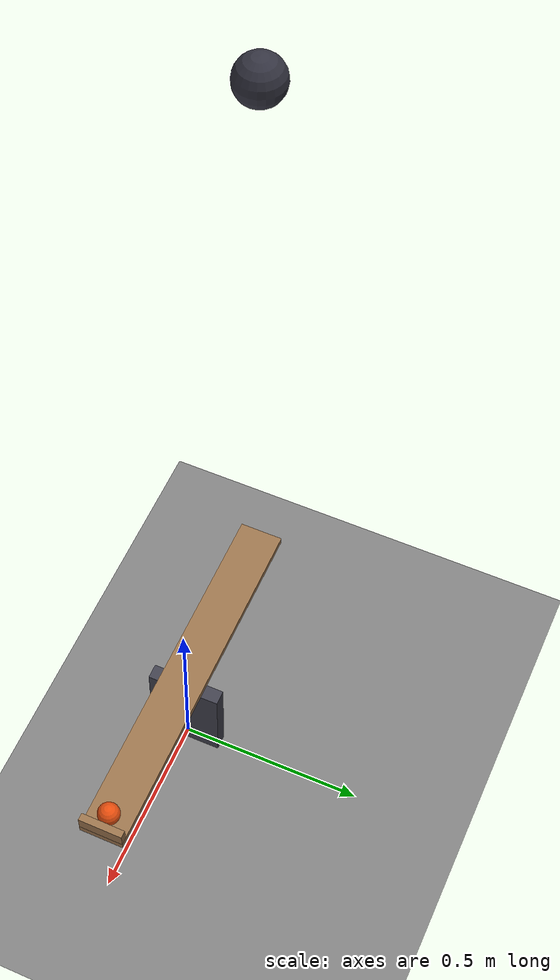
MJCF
<mujoco model="seesaw_throw">
  <compiler angle="radian"/>
  <option timestep="0.002"/>
  <worldbody>
    <geom name="floor" type="plane" size="8 8 0.1" friction="0.8 0.005 0.002"/>
    <body name="fulcrum">
      <geom name="fulcrum" type="box" pos="0 0 0.13" size="0.02 0.1 0.13" rgba="0.25 0.25 0.3 1"/>
    </body>
    <body name="seesaw" pos="0 0 0.3">
      <joint name="seesaw_pivot" type="hinge" pos="0 0 0" axis="0 1 0" limited="true" range="-0.349066 0.174533"/>
      <geom name="seesaw" type="box" pos="0 0 0" size="0.5 0.06 0.01" mass="0.3" solref="0.01 1" rgba="0.6 0.45 0.3 1"/>
      <geom name="lip" type="box" pos="0.49 0 0.03" size="0.01 0.06 0.02" mass="0.01" rgba="0.6 0.45 0.3 1"/>
    </body>
    <body name="ball" pos="0.45 0 0.34">
      <freejoint/>
      <geom name="ball" type="sphere" pos="0 0 0" size="0.03" mass="0.1" condim="6" friction="0.8 0.01 0.004" solref="0.01 1" rgba="0.9 0.3 0.05 1"/>
    </body>
    <body name="weight" pos="-0.45 0 2">
      <freejoint/>
      <geom name="weight" type="sphere" pos="0 0 0" size="0.06" mass="1" solref="0.01 1" rgba="0.2 0.2 0.25 1"/>
    </body>
  </worldbody>
  <keyframe>
    <key name="start" qpos="0.174533 0.45 0 0.34 1 0 0 0 -0.45 0 2 1 0 0 0" qvel="0 0 0 0 0 0 0 0 0 0 0 0 0"/>
  </keyframe>
</mujoco>
